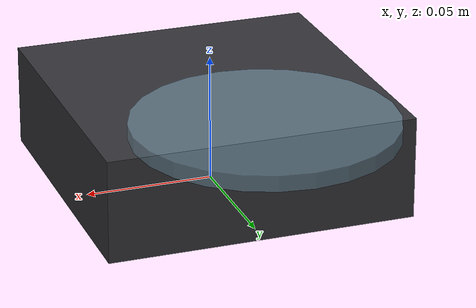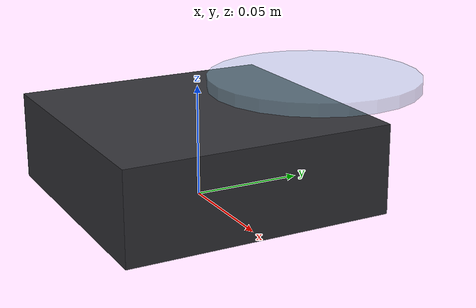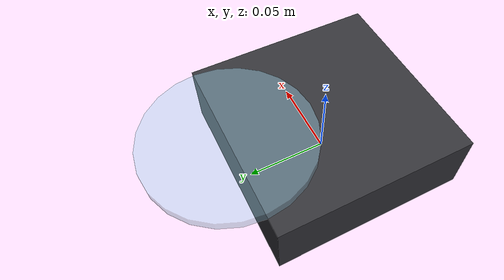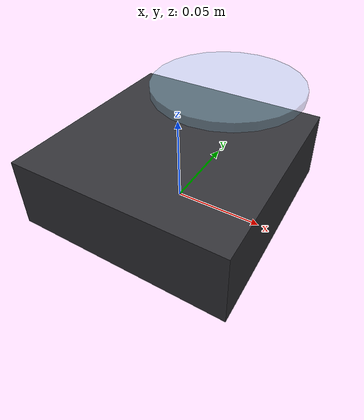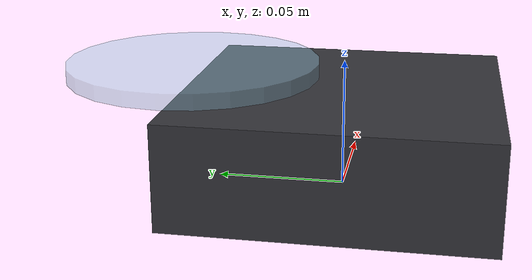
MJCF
<?xml version="1.0" encoding="utf-8"?>
<mujoco model="colony_counter">
  <compiler angle="radian" autolimits="true"/>
  <default>
    <default class="body"><geom contype="1" conaffinity="1"/></default>
  </default>
  <worldbody>
    <body name="base">
      <geom type="box" size="0.06 0.06 0.02" pos="0 0 0.02" rgba="0.2 0.2 0.22 1" class="body"/>
      <body name="lid" pos="0 0.06 0.045">
        <joint name="lid_joint" type="hinge" axis="1 0 0" range="0 1.4" damping="0.2" frictionloss="0.3"/>
  <geom type="cylinder" size="0.05 0.003" pos="0 0 0" rgba="0.6 0.8 0.9 0.4" class="body"/>
      </body>
    </body>
  </worldbody>
</mujoco>
